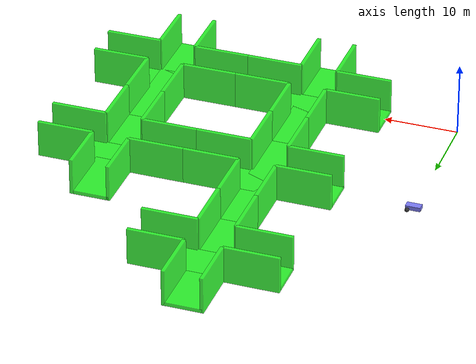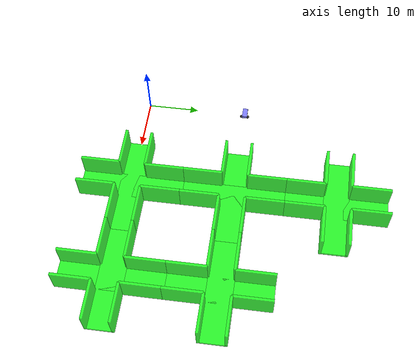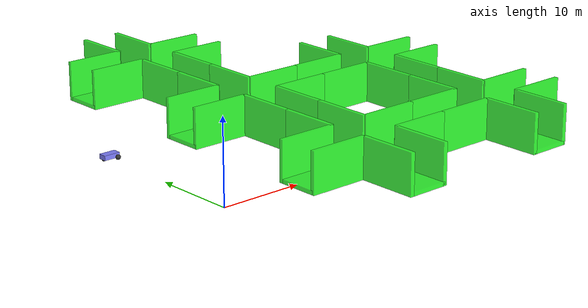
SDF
<sdf version="1.6">
 <world name="default">
  <model name="tile_3">
   <pose>20 0 0 0 0 -1.5707963267948966</pose>
   <static>true</static>
   <link name="link">
    <collision name="collision_0">
     <pose>0 0 -0.25 0 0 0</pose>
     <geometry><box><size>5 20 0.5</size></box></geometry>
    </collision>
    <visual name="visual_0">
     <pose>0 0 -0.25 0 0 0</pose>
     <geometry><box><size>5 20 0.5</size></box></geometry>
     <material><ambient>0 1 0 0.8</ambient><diffuse>0 1 0 0.8</diffuse><specular>1 1 1 0.8</specular></material>
    </visual>
    <collision name="collision_1">
     <pose>0 0 -0.25 0 0 1.57</pose>
     <geometry><box><size>5 20 0.5</size></box></geometry>
    </collision>
    <visual name="visual_1">
     <pose>0 0 -0.25 0 0 1.57</pose>
     <geometry><box><size>5 20 0.5</size></box></geometry>
     <material><ambient>0 1 0 0.8</ambient><diffuse>0 1 0 0.8</diffuse><specular>1 1 1 0.8</specular></material>
    </visual>
    <collision name="collision_2">
     <pose>-2.5 6.25 2 3.14 -1.57 0</pose>
     <geometry><box><size>5 7.5 0.5</size></box></geometry>
    </collision>
    <visual name="visual_2">
     <pose>-2.5 6.25 2 3.14 -1.57 0</pose>
     <geometry><box><size>5 7.5 0.5</size></box></geometry>
     <material><ambient>0 1 0 0.8</ambient><diffuse>0 1 0 0.8</diffuse><specular>1 1 1 0.8</specular></material>
    </visual>
    <collision name="collision_3">
     <pose>2.5 6.25 2 3.14 -1.57 0</pose>
     <geometry><box><size>5 7.5 0.5</size></box></geometry>
    </collision>
    <visual name="visual_3">
     <pose>2.5 6.25 2 3.14 -1.57 0</pose>
     <geometry><box><size>5 7.5 0.5</size></box></geometry>
     <material><ambient>0 1 0 0.8</ambient><diffuse>0 1 0 0.8</diffuse><specular>1 1 1 0.8</specular></material>
    </visual>
    <collision name="collision_4">
     <pose>-2.5 -6.25 2 3.14 -1.57 0</pose>
     <geometry><box><size>5 7.5 0.5</size></box></geometry>
    </collision>
    <visual name="visual_4">
     <pose>-2.5 -6.25 2 3.14 -1.57 0</pose>
     <geometry><box><size>5 7.5 0.5</size></box></geometry>
     <material><ambient>0 1 0 0.8</ambient><diffuse>0 1 0 0.8</diffuse><specular>1 1 1 0.8</specular></material>
    </visual>
    <collision name="collision_5">
     <pose>2.5 -6.25 2 3.14 -1.57 0</pose>
     <geometry><box><size>5 7.5 0.5</size></box></geometry>
    </collision>
    <visual name="visual_5">
     <pose>2.5 -6.25 2 3.14 -1.57 0</pose>
     <geometry><box><size>5 7.5 0.5</size></box></geometry>
     <material><ambient>0 1 0 0.8</ambient><diffuse>0 1 0 0.8</diffuse><specular>1 1 1 0.8</specular></material>
    </visual>
    <collision name="collision_6">
     <pose>6.25 2.5 2 1.57 1.57 0</pose>
     <geometry><box><size>5 7.5 0.5</size></box></geometry>
    </collision>
    <visual name="visual_6">
     <pose>6.25 2.5 2 1.57 1.57 0</pose>
     <geometry><box><size>5 7.5 0.5</size></box></geometry>
     <material><ambient>0 1 0 0.8</ambient><diffuse>0 1 0 0.8</diffuse><specular>1 1 1 0.8</specular></material>
    </visual>
    <collision name="collision_7">
     <pose>-6.25 2.5 2 1.57 1.57 0</pose>
     <geometry><box><size>5 7.5 0.5</size></box></geometry>
    </collision>
    <visual name="visual_7">
     <pose>-6.25 2.5 2 1.57 1.57 0</pose>
     <geometry><box><size>5 7.5 0.5</size></box></geometry>
     <material><ambient>0 1 0 0.8</ambient><diffuse>0 1 0 0.8</diffuse><specular>1 1 1 0.8</specular></material>
    </visual>
    <collision name="collision_8">
     <pose>6.25 -2.5 2 1.57 1.57 0</pose>
     <geometry><box><size>5 7.5 0.5</size></box></geometry>
    </collision>
    <visual name="visual_8">
     <pose>6.25 -2.5 2 1.57 1.57 0</pose>
     <geometry><box><size>5 7.5 0.5</size></box></geometry>
     <material><ambient>0 1 0 0.8</ambient><diffuse>0 1 0 0.8</diffuse><specular>1 1 1 0.8</specular></material>
    </visual>
    <collision name="collision_9">
     <pose>-6.25 -2.5 2 1.57 1.57 0</pose>
     <geometry><box><size>5 7.5 0.5</size></box></geometry>
    </collision>
    <visual name="visual_9">
     <pose>-6.25 -2.5 2 1.57 1.57 0</pose>
     <geometry><box><size>5 7.5 0.5</size></box></geometry>
     <material><ambient>0 1 0 0.8</ambient><diffuse>0 1 0 0.8</diffuse><specular>1 1 1 0.8</specular></material>
    </visual>
   </link>
  </model>
  <model name="tile_4">
   <pose>20 20 0 0 0 1.5707963267948966</pose>
   <static>true</static>
   <link name="link">
    <collision name="collision_0">
     <pose>0 0 -0.25 0 0 0</pose>
     <geometry><box><size>5 20 0.5</size></box></geometry>
    </collision>
    <visual name="visual_0">
     <pose>0 0 -0.25 0 0 0</pose>
     <geometry><box><size>5 20 0.5</size></box></geometry>
     <material><ambient>0 1 0 0.8</ambient><diffuse>0 1 0 0.8</diffuse><specular>1 1 1 0.8</specular></material>
    </visual>
    <collision name="collision_1">
     <pose>0 0 -0.25 0 0 1.57</pose>
     <geometry><box><size>5 20 0.5</size></box></geometry>
    </collision>
    <visual name="visual_1">
     <pose>0 0 -0.25 0 0 1.57</pose>
     <geometry><box><size>5 20 0.5</size></box></geometry>
     <material><ambient>0 1 0 0.8</ambient><diffuse>0 1 0 0.8</diffuse><specular>1 1 1 0.8</specular></material>
    </visual>
    <collision name="collision_2">
     <pose>-2.5 6.25 2 3.14 -1.57 0</pose>
     <geometry><box><size>5 7.5 0.5</size></box></geometry>
    </collision>
    <visual name="visual_2">
     <pose>-2.5 6.25 2 3.14 -1.57 0</pose>
     <geometry><box><size>5 7.5 0.5</size></box></geometry>
     <material><ambient>0 1 0 0.8</ambient><diffuse>0 1 0 0.8</diffuse><specular>1 1 1 0.8</specular></material>
    </visual>
    <collision name="collision_3">
     <pose>2.5 6.25 2 3.14 -1.57 0</pose>
     <geometry><box><size>5 7.5 0.5</size></box></geometry>
    </collision>
    <visual name="visual_3">
     <pose>2.5 6.25 2 3.14 -1.57 0</pose>
     <geometry><box><size>5 7.5 0.5</size></box></geometry>
     <material><ambient>0 1 0 0.8</ambient><diffuse>0 1 0 0.8</diffuse><specular>1 1 1 0.8</specular></material>
    </visual>
    <collision name="collision_4">
     <pose>-2.5 -6.25 2 3.14 -1.57 0</pose>
     <geometry><box><size>5 7.5 0.5</size></box></geometry>
    </collision>
    <visual name="visual_4">
     <pose>-2.5 -6.25 2 3.14 -1.57 0</pose>
     <geometry><box><size>5 7.5 0.5</size></box></geometry>
     <material><ambient>0 1 0 0.8</ambient><diffuse>0 1 0 0.8</diffuse><specular>1 1 1 0.8</specular></material>
    </visual>
    <collision name="collision_5">
     <pose>2.5 -6.25 2 3.14 -1.57 0</pose>
     <geometry><box><size>5 7.5 0.5</size></box></geometry>
    </collision>
    <visual name="visual_5">
     <pose>2.5 -6.25 2 3.14 -1.57 0</pose>
     <geometry><box><size>5 7.5 0.5</size></box></geometry>
     <material><ambient>0 1 0 0.8</ambient><diffuse>0 1 0 0.8</diffuse><specular>1 1 1 0.8</specular></material>
    </visual>
    <collision name="collision_6">
     <pose>6.25 2.5 2 1.57 1.57 0</pose>
     <geometry><box><size>5 7.5 0.5</size></box></geometry>
    </collision>
    <visual name="visual_6">
     <pose>6.25 2.5 2 1.57 1.57 0</pose>
     <geometry><box><size>5 7.5 0.5</size></box></geometry>
     <material><ambient>0 1 0 0.8</ambient><diffuse>0 1 0 0.8</diffuse><specular>1 1 1 0.8</specular></material>
    </visual>
    <collision name="collision_7">
     <pose>-6.25 2.5 2 1.57 1.57 0</pose>
     <geometry><box><size>5 7.5 0.5</size></box></geometry>
    </collision>
    <visual name="visual_7">
     <pose>-6.25 2.5 2 1.57 1.57 0</pose>
     <geometry><box><size>5 7.5 0.5</size></box></geometry>
     <material><ambient>0 1 0 0.8</ambient><diffuse>0 1 0 0.8</diffuse><specular>1 1 1 0.8</specular></material>
    </visual>
    <collision name="collision_8">
     <pose>6.25 -2.5 2 1.57 1.57 0</pose>
     <geometry><box><size>5 7.5 0.5</size></box></geometry>
    </collision>
    <visual name="visual_8">
     <pose>6.25 -2.5 2 1.57 1.57 0</pose>
     <geometry><box><size>5 7.5 0.5</size></box></geometry>
     <material><ambient>0 1 0 0.8</ambient><diffuse>0 1 0 0.8</diffuse><specular>1 1 1 0.8</specular></material>
    </visual>
    <collision name="collision_9">
     <pose>-6.25 -2.5 2 1.57 1.57 0</pose>
     <geometry><box><size>5 7.5 0.5</size></box></geometry>
    </collision>
    <visual name="visual_9">
     <pose>-6.25 -2.5 2 1.57 1.57 0</pose>
     <geometry><box><size>5 7.5 0.5</size></box></geometry>
     <material><ambient>0 1 0 0.8</ambient><diffuse>0 1 0 0.8</diffuse><specular>1 1 1 0.8</specular></material>
    </visual>
   </link>
  </model>
  <model name="tile_5">
   <pose>20 40 0 0 0 -1.5707963267948966</pose>
   <static>true</static>
   <link name="link">
    <collision name="collision_0">
     <pose>0 0 -0.25 0 0 0</pose>
     <geometry><box><size>5 20 0.5</size></box></geometry>
    </collision>
    <visual name="visual_0">
     <pose>0 0 -0.25 0 0 0</pose>
     <geometry><box><size>5 20 0.5</size></box></geometry>
     <material><ambient>0 1 0 0.8</ambient><diffuse>0 1 0 0.8</diffuse><specular>1 1 1 0.8</specular></material>
    </visual>
    <collision name="collision_1">
     <pose>0 0 -0.25 0 0 1.57</pose>
     <geometry><box><size>5 20 0.5</size></box></geometry>
    </collision>
    <visual name="visual_1">
     <pose>0 0 -0.25 0 0 1.57</pose>
     <geometry><box><size>5 20 0.5</size></box></geometry>
     <material><ambient>0 1 0 0.8</ambient><diffuse>0 1 0 0.8</diffuse><specular>1 1 1 0.8</specular></material>
    </visual>
    <collision name="collision_2">
     <pose>-2.5 6.25 2 3.14 -1.57 0</pose>
     <geometry><box><size>5 7.5 0.5</size></box></geometry>
    </collision>
    <visual name="visual_2">
     <pose>-2.5 6.25 2 3.14 -1.57 0</pose>
     <geometry><box><size>5 7.5 0.5</size></box></geometry>
     <material><ambient>0 1 0 0.8</ambient><diffuse>0 1 0 0.8</diffuse><specular>1 1 1 0.8</specular></material>
    </visual>
    <collision name="collision_3">
     <pose>2.5 6.25 2 3.14 -1.57 0</pose>
     <geometry><box><size>5 7.5 0.5</size></box></geometry>
    </collision>
    <visual name="visual_3">
     <pose>2.5 6.25 2 3.14 -1.57 0</pose>
     <geometry><box><size>5 7.5 0.5</size></box></geometry>
     <material><ambient>0 1 0 0.8</ambient><diffuse>0 1 0 0.8</diffuse><specular>1 1 1 0.8</specular></material>
    </visual>
    <collision name="collision_4">
     <pose>-2.5 -6.25 2 3.14 -1.57 0</pose>
     <geometry><box><size>5 7.5 0.5</size></box></geometry>
    </collision>
    <visual name="visual_4">
     <pose>-2.5 -6.25 2 3.14 -1.57 0</pose>
     <geometry><box><size>5 7.5 0.5</size></box></geometry>
     <material><ambient>0 1 0 0.8</ambient><diffuse>0 1 0 0.8</diffuse><specular>1 1 1 0.8</specular></material>
    </visual>
    <collision name="collision_5">
     <pose>2.5 -6.25 2 3.14 -1.57 0</pose>
     <geometry><box><size>5 7.5 0.5</size></box></geometry>
    </collision>
    <visual name="visual_5">
     <pose>2.5 -6.25 2 3.14 -1.57 0</pose>
     <geometry><box><size>5 7.5 0.5</size></box></geometry>
     <material><ambient>0 1 0 0.8</ambient><diffuse>0 1 0 0.8</diffuse><specular>1 1 1 0.8</specular></material>
    </visual>
    <collision name="collision_6">
     <pose>6.25 2.5 2 1.57 1.57 0</pose>
     <geometry><box><size>5 7.5 0.5</size></box></geometry>
    </collision>
    <visual name="visual_6">
     <pose>6.25 2.5 2 1.57 1.57 0</pose>
     <geometry><box><size>5 7.5 0.5</size></box></geometry>
     <material><ambient>0 1 0 0.8</ambient><diffuse>0 1 0 0.8</diffuse><specular>1 1 1 0.8</specular></material>
    </visual>
    <collision name="collision_7">
     <pose>-6.25 2.5 2 1.57 1.57 0</pose>
     <geometry><box><size>5 7.5 0.5</size></box></geometry>
    </collision>
    <visual name="visual_7">
     <pose>-6.25 2.5 2 1.57 1.57 0</pose>
     <geometry><box><size>5 7.5 0.5</size></box></geometry>
     <material><ambient>0 1 0 0.8</ambient><diffuse>0 1 0 0.8</diffuse><specular>1 1 1 0.8</specular></material>
    </visual>
    <collision name="collision_8">
     <pose>6.25 -2.5 2 1.57 1.57 0</pose>
     <geometry><box><size>5 7.5 0.5</size></box></geometry>
    </collision>
    <visual name="visual_8">
     <pose>6.25 -2.5 2 1.57 1.57 0</pose>
     <geometry><box><size>5 7.5 0.5</size></box></geometry>
     <material><ambient>0 1 0 0.8</ambient><diffuse>0 1 0 0.8</diffuse><specular>1 1 1 0.8</specular></material>
    </visual>
    <collision name="collision_9">
     <pose>-6.25 -2.5 2 1.57 1.57 0</pose>
     <geometry><box><size>5 7.5 0.5</size></box></geometry>
    </collision>
    <visual name="visual_9">
     <pose>-6.25 -2.5 2 1.57 1.57 0</pose>
     <geometry><box><size>5 7.5 0.5</size></box></geometry>
     <material><ambient>0 1 0 0.8</ambient><diffuse>0 1 0 0.8</diffuse><specular>1 1 1 0.8</specular></material>
    </visual>
   </link>
  </model>
  <model name="tile_8">
   <pose>40 0 0 0 0 3.141592653589793</pose>
   <static>true</static>
   <link name="link">
    <collision name="collision_0">
     <pose>0 0 -0.25 0 0 0</pose>
     <geometry><box><size>5 20 0.5</size></box></geometry>
    </collision>
    <visual name="visual_0">
     <pose>0 0 -0.25 0 0 0</pose>
     <geometry><box><size>5 20 0.5</size></box></geometry>
     <material><ambient>0 1 0 0.8</ambient><diffuse>0 1 0 0.8</diffuse><specular>1 1 1 0.8</specular></material>
    </visual>
    <collision name="collision_1">
     <pose>0 0 -0.25 0 0 1.57</pose>
     <geometry><box><size>5 20 0.5</size></box></geometry>
    </collision>
    <visual name="visual_1">
     <pose>0 0 -0.25 0 0 1.57</pose>
     <geometry><box><size>5 20 0.5</size></box></geometry>
     <material><ambient>0 1 0 0.8</ambient><diffuse>0 1 0 0.8</diffuse><specular>1 1 1 0.8</specular></material>
    </visual>
    <collision name="collision_2">
     <pose>-2.5 6.25 2 3.14 -1.57 0</pose>
     <geometry><box><size>5 7.5 0.5</size></box></geometry>
    </collision>
    <visual name="visual_2">
     <pose>-2.5 6.25 2 3.14 -1.57 0</pose>
     <geometry><box><size>5 7.5 0.5</size></box></geometry>
     <material><ambient>0 1 0 0.8</ambient><diffuse>0 1 0 0.8</diffuse><specular>1 1 1 0.8</specular></material>
    </visual>
    <collision name="collision_3">
     <pose>2.5 6.25 2 3.14 -1.57 0</pose>
     <geometry><box><size>5 7.5 0.5</size></box></geometry>
    </collision>
    <visual name="visual_3">
     <pose>2.5 6.25 2 3.14 -1.57 0</pose>
     <geometry><box><size>5 7.5 0.5</size></box></geometry>
     <material><ambient>0 1 0 0.8</ambient><diffuse>0 1 0 0.8</diffuse><specular>1 1 1 0.8</specular></material>
    </visual>
    <collision name="collision_4">
     <pose>-2.5 -6.25 2 3.14 -1.57 0</pose>
     <geometry><box><size>5 7.5 0.5</size></box></geometry>
    </collision>
    <visual name="visual_4">
     <pose>-2.5 -6.25 2 3.14 -1.57 0</pose>
     <geometry><box><size>5 7.5 0.5</size></box></geometry>
     <material><ambient>0 1 0 0.8</ambient><diffuse>0 1 0 0.8</diffuse><specular>1 1 1 0.8</specular></material>
    </visual>
    <collision name="collision_5">
     <pose>2.5 -6.25 2 3.14 -1.57 0</pose>
     <geometry><box><size>5 7.5 0.5</size></box></geometry>
    </collision>
    <visual name="visual_5">
     <pose>2.5 -6.25 2 3.14 -1.57 0</pose>
     <geometry><box><size>5 7.5 0.5</size></box></geometry>
     <material><ambient>0 1 0 0.8</ambient><diffuse>0 1 0 0.8</diffuse><specular>1 1 1 0.8</specular></material>
    </visual>
    <collision name="collision_6">
     <pose>6.25 2.5 2 1.57 1.57 0</pose>
     <geometry><box><size>5 7.5 0.5</size></box></geometry>
    </collision>
    <visual name="visual_6">
     <pose>6.25 2.5 2 1.57 1.57 0</pose>
     <geometry><box><size>5 7.5 0.5</size></box></geometry>
     <material><ambient>0 1 0 0.8</ambient><diffuse>0 1 0 0.8</diffuse><specular>1 1 1 0.8</specular></material>
    </visual>
    <collision name="collision_7">
     <pose>-6.25 2.5 2 1.57 1.57 0</pose>
     <geometry><box><size>5 7.5 0.5</size></box></geometry>
    </collision>
    <visual name="visual_7">
     <pose>-6.25 2.5 2 1.57 1.57 0</pose>
     <geometry><box><size>5 7.5 0.5</size></box></geometry>
     <material><ambient>0 1 0 0.8</ambient><diffuse>0 1 0 0.8</diffuse><specular>1 1 1 0.8</specular></material>
    </visual>
    <collision name="collision_8">
     <pose>6.25 -2.5 2 1.57 1.57 0</pose>
     <geometry><box><size>5 7.5 0.5</size></box></geometry>
    </collision>
    <visual name="visual_8">
     <pose>6.25 -2.5 2 1.57 1.57 0</pose>
     <geometry><box><size>5 7.5 0.5</size></box></geometry>
     <material><ambient>0 1 0 0.8</ambient><diffuse>0 1 0 0.8</diffuse><specular>1 1 1 0.8</specular></material>
    </visual>
    <collision name="collision_9">
     <pose>-6.25 -2.5 2 1.57 1.57 0</pose>
     <geometry><box><size>5 7.5 0.5</size></box></geometry>
    </collision>
    <visual name="visual_9">
     <pose>-6.25 -2.5 2 1.57 1.57 0</pose>
     <geometry><box><size>5 7.5 0.5</size></box></geometry>
     <material><ambient>0 1 0 0.8</ambient><diffuse>0 1 0 0.8</diffuse><specular>1 1 1 0.8</specular></material>
    </visual>
   </link>
  </model>
  <model name="tile_9">
   <pose>40 20 0 0 0 1.5707963267948966</pose>
   <static>true</static>
   <link name="link">
    <collision name="collision_0">
     <pose>0 0 -0.25 0 0 0</pose>
     <geometry><box><size>5 20 0.5</size></box></geometry>
    </collision>
    <visual name="visual_0">
     <pose>0 0 -0.25 0 0 0</pose>
     <geometry><box><size>5 20 0.5</size></box></geometry>
     <material><ambient>0 1 0 0.8</ambient><diffuse>0 1 0 0.8</diffuse><specular>1 1 1 0.8</specular></material>
    </visual>
    <collision name="collision_1">
     <pose>0 0 -0.25 0 0 1.57</pose>
     <geometry><box><size>5 20 0.5</size></box></geometry>
    </collision>
    <visual name="visual_1">
     <pose>0 0 -0.25 0 0 1.57</pose>
     <geometry><box><size>5 20 0.5</size></box></geometry>
     <material><ambient>0 1 0 0.8</ambient><diffuse>0 1 0 0.8</diffuse><specular>1 1 1 0.8</specular></material>
    </visual>
    <collision name="collision_2">
     <pose>-2.5 6.25 2 3.14 -1.57 0</pose>
     <geometry><box><size>5 7.5 0.5</size></box></geometry>
    </collision>
    <visual name="visual_2">
     <pose>-2.5 6.25 2 3.14 -1.57 0</pose>
     <geometry><box><size>5 7.5 0.5</size></box></geometry>
     <material><ambient>0 1 0 0.8</ambient><diffuse>0 1 0 0.8</diffuse><specular>1 1 1 0.8</specular></material>
    </visual>
    <collision name="collision_3">
     <pose>2.5 6.25 2 3.14 -1.57 0</pose>
     <geometry><box><size>5 7.5 0.5</size></box></geometry>
    </collision>
    <visual name="visual_3">
     <pose>2.5 6.25 2 3.14 -1.57 0</pose>
     <geometry><box><size>5 7.5 0.5</size></box></geometry>
     <material><ambient>0 1 0 0.8</ambient><diffuse>0 1 0 0.8</diffuse><specular>1 1 1 0.8</specular></material>
    </visual>
    <collision name="collision_4">
     <pose>-2.5 -6.25 2 3.14 -1.57 0</pose>
     <geometry><box><size>5 7.5 0.5</size></box></geometry>
    </collision>
    <visual name="visual_4">
     <pose>-2.5 -6.25 2 3.14 -1.57 0</pose>
     <geometry><box><size>5 7.5 0.5</size></box></geometry>
     <material><ambient>0 1 0 0.8</ambient><diffuse>0 1 0 0.8</diffuse><specular>1 1 1 0.8</specular></material>
    </visual>
    <collision name="collision_5">
     <pose>2.5 -6.25 2 3.14 -1.57 0</pose>
     <geometry><box><size>5 7.5 0.5</size></box></geometry>
    </collision>
    <visual name="visual_5">
     <pose>2.5 -6.25 2 3.14 -1.57 0</pose>
     <geometry><box><size>5 7.5 0.5</size></box></geometry>
     <material><ambient>0 1 0 0.8</ambient><diffuse>0 1 0 0.8</diffuse><specular>1 1 1 0.8</specular></material>
    </visual>
    <collision name="collision_6">
     <pose>6.25 2.5 2 1.57 1.57 0</pose>
     <geometry><box><size>5 7.5 0.5</size></box></geometry>
    </collision>
    <visual name="visual_6">
     <pose>6.25 2.5 2 1.57 1.57 0</pose>
     <geometry><box><size>5 7.5 0.5</size></box></geometry>
     <material><ambient>0 1 0 0.8</ambient><diffuse>0 1 0 0.8</diffuse><specular>1 1 1 0.8</specular></material>
    </visual>
    <collision name="collision_7">
     <pose>-6.25 2.5 2 1.57 1.57 0</pose>
     <geometry><box><size>5 7.5 0.5</size></box></geometry>
    </collision>
    <visual name="visual_7">
     <pose>-6.25 2.5 2 1.57 1.57 0</pose>
     <geometry><box><size>5 7.5 0.5</size></box></geometry>
     <material><ambient>0 1 0 0.8</ambient><diffuse>0 1 0 0.8</diffuse><specular>1 1 1 0.8</specular></material>
    </visual>
    <collision name="collision_8">
     <pose>6.25 -2.5 2 1.57 1.57 0</pose>
     <geometry><box><size>5 7.5 0.5</size></box></geometry>
    </collision>
    <visual name="visual_8">
     <pose>6.25 -2.5 2 1.57 1.57 0</pose>
     <geometry><box><size>5 7.5 0.5</size></box></geometry>
     <material><ambient>0 1 0 0.8</ambient><diffuse>0 1 0 0.8</diffuse><specular>1 1 1 0.8</specular></material>
    </visual>
    <collision name="collision_9">
     <pose>-6.25 -2.5 2 1.57 1.57 0</pose>
     <geometry><box><size>5 7.5 0.5</size></box></geometry>
    </collision>
    <visual name="visual_9">
     <pose>-6.25 -2.5 2 1.57 1.57 0</pose>
     <geometry><box><size>5 7.5 0.5</size></box></geometry>
     <material><ambient>0 1 0 0.8</ambient><diffuse>0 1 0 0.8</diffuse><specular>1 1 1 0.8</specular></material>
    </visual>
   </link>
  </model>
  <model name="vehicle_blue">
   <pose>0 20 0.325 0 0 0</pose>
   <link name="chassis">
    <pose>-0.151427 -0 0.175 0 -0 0</pose>
    <inertial>
     <mass>1.14395</mass>
     <inertia>
      <ixx>0.126164</ixx>
      <ixy>0</ixy>
      <ixz>0</ixz>
      <iyy>0.416519</iyy>
      <iyz>0</iyz>
      <izz>0.481014</izz>
     </inertia>
    </inertial>
    <visual name="visual">
     <geometry><box><size>2.01142 1 0.568726</size></box></geometry>
     <material>
      <ambient>0.5 0.5 1.0 1</ambient>
      <diffuse>0.5 0.5 1.0 1</diffuse>
      <specular>0.5 0.5 1.0 1</specular>
     </material>
    </visual>
    <collision name="collision"><geometry><box><size>2.01142 1 0.568726</size></box></geometry></collision>
   </link>
   <link name="left_wheel">
    <pose>0.554283 0.625029 -0.025 -1.5707 0 0</pose>
    <inertial>
     <mass>2</mass>
     <inertia><ixx>0.145833</ixx><ixy>0</ixy><ixz>0</ixz><iyy>0.145833</iyy><iyz>0</iyz><izz>0.125</izz></inertia>
    </inertial>
    <visual name="visual">
     <geometry><sphere><radius>0.3</radius></sphere></geometry>
     <material>
      <ambient>0.2 0.2 0.2 1</ambient>
      <diffuse>0.2 0.2 0.2 1</diffuse>
      <specular>0.2 0.2 0.2 1</specular>
     </material>
    </visual>
    <collision name="collision"><geometry><sphere><radius>0.3</radius></sphere></geometry></collision>
   </link>
   <link name="right_wheel">
    <pose>0.554282 -0.625029 -0.025 -1.5707 0 0</pose>
    <inertial>
     <mass>2</mass>
     <inertia><ixx>0.145833</ixx><ixy>0</ixy><ixz>0</ixz><iyy>0.145833</iyy><iyz>0</iyz><izz>0.125</izz></inertia>
    </inertial>
    <visual name="visual">
     <geometry><sphere><radius>0.3</radius></sphere></geometry>
     <material>
      <ambient>0.2 0.2 0.2 1</ambient>
      <diffuse>0.2 0.2 0.2 1</diffuse>
      <specular>0.2 0.2 0.2 1</specular>
     </material>
    </visual>
    <collision name="collision"><geometry><sphere><radius>0.3</radius></sphere></geometry></collision>
   </link>
   <link name="caster">
    <pose>-0.957138 -0 -0.125 0 -0 0</pose>
    <inertial>
     <mass>1</mass>
     <inertia><ixx>0.1</ixx><ixy>0</ixy><ixz>0</ixz><iyy>0.1</iyy><iyz>0</iyz><izz>0.1</izz></inertia>
    </inertial>
    <visual name="visual">
     <geometry><sphere><radius>0.2</radius></sphere></geometry>
     <material>
      <ambient>0.2 0.2 0.2 1</ambient>
      <diffuse>0.2 0.2 0.2 1</diffuse>
      <specular>0.2 0.2 0.2 1</specular>
     </material>
    </visual>
    <collision name="collision"><geometry><sphere><radius>0.2</radius></sphere></geometry></collision>
   </link>
   <joint name="left_wheel_joint" type="revolute">
    <parent>chassis</parent>
    <child>left_wheel</child>
    <axis><xyz>0 0 1</xyz><limit><lower>-1.79769e+308</lower><upper>1.79769e+308</upper></limit></axis>
   </joint>
   <joint name="right_wheel_joint" type="revolute">
    <parent>chassis</parent>
    <child>right_wheel</child>
    <axis><xyz>0 0 1</xyz><limit><lower>-1.79769e+308</lower><upper>1.79769e+308</upper></limit></axis>
   </joint>
   <joint name="caster_wheel" type="ball"><parent>chassis</parent><child>caster</child></joint>
  </model>
 </world>
</sdf>
